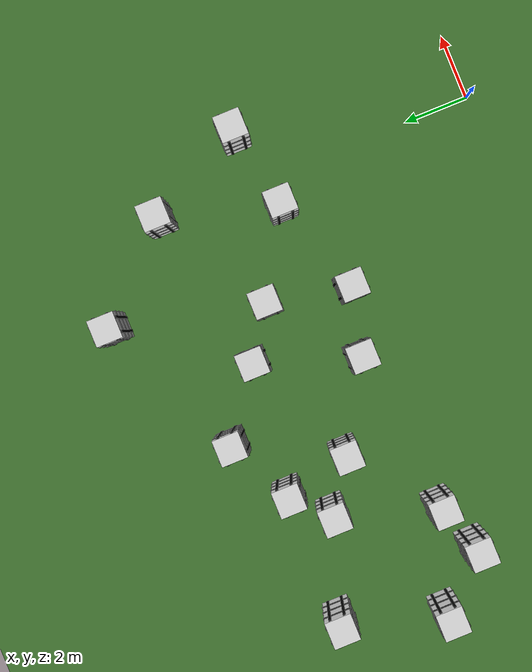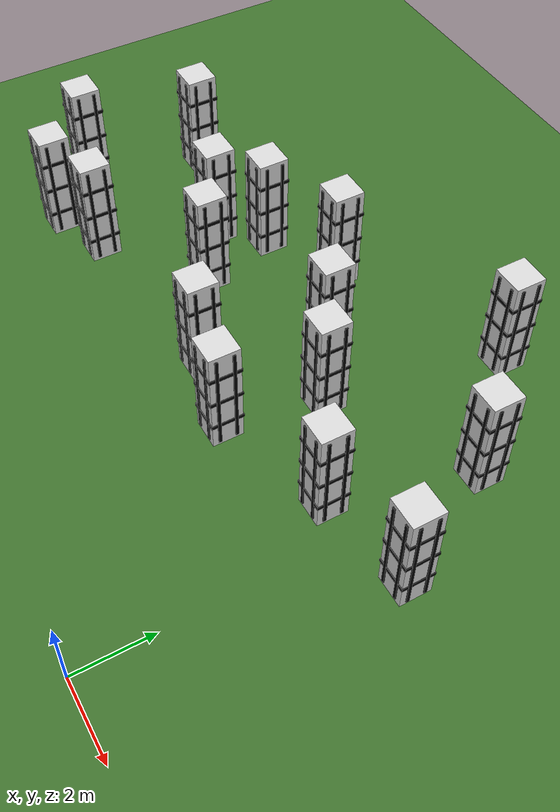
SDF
<sdf version="1.6">
 <world name="dense_world_complex">
  <model name="ground">
   <static>1</static>
   <link name="link">
    <collision name="collision"><geometry><box><size>45 35 0.1</size></box></geometry></collision>
    <visual name="visual">
     <geometry><box><size>45 35 0.1</size></box></geometry>
     <material><ambient>0.25 0.45 0.18 1</ambient><diffuse>0.25 0.45 0.18 1</diffuse></material>
    </visual>
   </link>
   <pose>3 2 -0.05 0 0 0</pose>
  </model>
  <model name="obs_01">
   <static>1</static>
   <pose>-14.0 6.5 1.5 0 0 0</pose>
   <link name="link">
    <collision name="collision"><geometry><box><size>0.8 0.8 3.0</size></box></geometry></collision>
    <visual name="body">
     <geometry><box><size>0.8 0.8 3.0</size></box></geometry>
     <material><ambient>0.85 0.85 0.85 1</ambient><diffuse>0.85 0.85 0.85 1</diffuse></material>
    </visual>
    <visual name="stripe_h_1">
     <pose>0 0 -0.8 0 0 0</pose>
     <geometry><box><size>0.84 0.84 0.10</size></box></geometry>
     <material><ambient>0.02 0.02 0.02 1</ambient><diffuse>0.02 0.02 0.02 1</diffuse></material>
    </visual>
    <visual name="stripe_h_2">
     <geometry><box><size>0.84 0.84 0.10</size></box></geometry>
     <material><ambient>0.02 0.02 0.02 1</ambient><diffuse>0.02 0.02 0.02 1</diffuse></material>
    </visual>
    <visual name="stripe_h_3">
     <pose>0 0 0.8 0 0 0</pose>
     <geometry><box><size>0.84 0.84 0.10</size></box></geometry>
     <material><ambient>0.02 0.02 0.02 1</ambient><diffuse>0.02 0.02 0.02 1</diffuse></material>
    </visual>
    <visual name="stripe_v_x_1">
     <pose>-0.22 0 0 0 0 0</pose>
     <geometry><box><size>0.08 0.86 2.8</size></box></geometry>
     <material><ambient>0.02 0.02 0.02 1</ambient><diffuse>0.02 0.02 0.02 1</diffuse></material>
    </visual>
    <visual name="stripe_v_x_2">
     <pose>0.22 0 0 0 0 0</pose>
     <geometry><box><size>0.08 0.86 2.8</size></box></geometry>
     <material><ambient>0.02 0.02 0.02 1</ambient><diffuse>0.02 0.02 0.02 1</diffuse></material>
    </visual>
    <visual name="stripe_v_y_1">
     <pose>0 -0.22 0 0 0 0</pose>
     <geometry><box><size>0.86 0.08 2.8</size></box></geometry>
     <material><ambient>0.02 0.02 0.02 1</ambient><diffuse>0.02 0.02 0.02 1</diffuse></material>
    </visual>
    <visual name="stripe_v_y_2">
     <pose>0 0.22 0 0 0 0</pose>
     <geometry><box><size>0.86 0.08 2.8</size></box></geometry>
     <material><ambient>0.02 0.02 0.02 1</ambient><diffuse>0.02 0.02 0.02 1</diffuse></material>
    </visual>
   </link>
  </model>
  <model name="obs_02">
   <static>1</static>
   <pose>-13.0 9.5 1.5 0 0 0</pose>
   <link name="link">
    <collision name="collision"><geometry><box><size>0.8 0.8 3.0</size></box></geometry></collision>
    <visual name="body">
     <geometry><box><size>0.8 0.8 3.0</size></box></geometry>
     <material><ambient>0.85 0.85 0.85 1</ambient><diffuse>0.85 0.85 0.85 1</diffuse></material>
    </visual>
    <visual name="stripe_h_1">
     <pose>0 0 -0.8 0 0 0</pose>
     <geometry><box><size>0.84 0.84 0.10</size></box></geometry>
     <material><ambient>0.02 0.02 0.02 1</ambient><diffuse>0.02 0.02 0.02 1</diffuse></material>
    </visual>
    <visual name="stripe_h_2">
     <geometry><box><size>0.84 0.84 0.10</size></box></geometry>
     <material><ambient>0.02 0.02 0.02 1</ambient><diffuse>0.02 0.02 0.02 1</diffuse></material>
    </visual>
    <visual name="stripe_h_3">
     <pose>0 0 0.8 0 0 0</pose>
     <geometry><box><size>0.84 0.84 0.10</size></box></geometry>
     <material><ambient>0.02 0.02 0.02 1</ambient><diffuse>0.02 0.02 0.02 1</diffuse></material>
    </visual>
    <visual name="stripe_v_x_1">
     <pose>-0.22 0 0 0 0 0</pose>
     <geometry><box><size>0.08 0.86 2.8</size></box></geometry>
     <material><ambient>0.02 0.02 0.02 1</ambient><diffuse>0.02 0.02 0.02 1</diffuse></material>
    </visual>
    <visual name="stripe_v_x_2">
     <pose>0.22 0 0 0 0 0</pose>
     <geometry><box><size>0.08 0.86 2.8</size></box></geometry>
     <material><ambient>0.02 0.02 0.02 1</ambient><diffuse>0.02 0.02 0.02 1</diffuse></material>
    </visual>
    <visual name="stripe_v_y_1">
     <pose>0 -0.22 0 0 0 0</pose>
     <geometry><box><size>0.86 0.08 2.8</size></box></geometry>
     <material><ambient>0.02 0.02 0.02 1</ambient><diffuse>0.02 0.02 0.02 1</diffuse></material>
    </visual>
    <visual name="stripe_v_y_2">
     <pose>0 0.22 0 0 0 0</pose>
     <geometry><box><size>0.86 0.08 2.8</size></box></geometry>
     <material><ambient>0.02 0.02 0.02 1</ambient><diffuse>0.02 0.02 0.02 1</diffuse></material>
    </visual>
   </link>
  </model>
  <model name="obs_03">
   <static>1</static>
   <pose>-11.0 5.5 1.5 0 0 0</pose>
   <link name="link">
    <collision name="collision"><geometry><box><size>0.8 0.8 3.0</size></box></geometry></collision>
    <visual name="body">
     <geometry><box><size>0.8 0.8 3.0</size></box></geometry>
     <material><ambient>0.85 0.85 0.85 1</ambient><diffuse>0.85 0.85 0.85 1</diffuse></material>
    </visual>
    <visual name="stripe_h_1">
     <pose>0 0 -0.8 0 0 0</pose>
     <geometry><box><size>0.84 0.84 0.10</size></box></geometry>
     <material><ambient>0.02 0.02 0.02 1</ambient><diffuse>0.02 0.02 0.02 1</diffuse></material>
    </visual>
    <visual name="stripe_h_2">
     <geometry><box><size>0.84 0.84 0.10</size></box></geometry>
     <material><ambient>0.02 0.02 0.02 1</ambient><diffuse>0.02 0.02 0.02 1</diffuse></material>
    </visual>
    <visual name="stripe_h_3">
     <pose>0 0 0.8 0 0 0</pose>
     <geometry><box><size>0.84 0.84 0.10</size></box></geometry>
     <material><ambient>0.02 0.02 0.02 1</ambient><diffuse>0.02 0.02 0.02 1</diffuse></material>
    </visual>
    <visual name="stripe_v_x_1">
     <pose>-0.22 0 0 0 0 0</pose>
     <geometry><box><size>0.08 0.86 2.8</size></box></geometry>
     <material><ambient>0.02 0.02 0.02 1</ambient><diffuse>0.02 0.02 0.02 1</diffuse></material>
    </visual>
    <visual name="stripe_v_x_2">
     <pose>0.22 0 0 0 0 0</pose>
     <geometry><box><size>0.08 0.86 2.8</size></box></geometry>
     <material><ambient>0.02 0.02 0.02 1</ambient><diffuse>0.02 0.02 0.02 1</diffuse></material>
    </visual>
    <visual name="stripe_v_y_1">
     <pose>0 -0.22 0 0 0 0</pose>
     <geometry><box><size>0.86 0.08 2.8</size></box></geometry>
     <material><ambient>0.02 0.02 0.02 1</ambient><diffuse>0.02 0.02 0.02 1</diffuse></material>
    </visual>
    <visual name="stripe_v_y_2">
     <pose>0 0.22 0 0 0 0</pose>
     <geometry><box><size>0.86 0.08 2.8</size></box></geometry>
     <material><ambient>0.02 0.02 0.02 1</ambient><diffuse>0.02 0.02 0.02 1</diffuse></material>
    </visual>
   </link>
  </model>
  <model name="obs_04">
   <static>1</static>
   <pose>-10.0 8.5 1.5 0 0 0</pose>
   <link name="link">
    <collision name="collision"><geometry><box><size>0.8 0.8 3.0</size></box></geometry></collision>
    <visual name="body">
     <geometry><box><size>0.8 0.8 3.0</size></box></geometry>
     <material><ambient>0.85 0.85 0.85 1</ambient><diffuse>0.85 0.85 0.85 1</diffuse></material>
    </visual>
    <visual name="stripe_h_1">
     <pose>0 0 -0.8 0 0 0</pose>
     <geometry><box><size>0.84 0.84 0.10</size></box></geometry>
     <material><ambient>0.02 0.02 0.02 1</ambient><diffuse>0.02 0.02 0.02 1</diffuse></material>
    </visual>
    <visual name="stripe_h_2">
     <geometry><box><size>0.84 0.84 0.10</size></box></geometry>
     <material><ambient>0.02 0.02 0.02 1</ambient><diffuse>0.02 0.02 0.02 1</diffuse></material>
    </visual>
    <visual name="stripe_h_3">
     <pose>0 0 0.8 0 0 0</pose>
     <geometry><box><size>0.84 0.84 0.10</size></box></geometry>
     <material><ambient>0.02 0.02 0.02 1</ambient><diffuse>0.02 0.02 0.02 1</diffuse></material>
    </visual>
    <visual name="stripe_v_x_1">
     <pose>-0.22 0 0 0 0 0</pose>
     <geometry><box><size>0.08 0.86 2.8</size></box></geometry>
     <material><ambient>0.02 0.02 0.02 1</ambient><diffuse>0.02 0.02 0.02 1</diffuse></material>
    </visual>
    <visual name="stripe_v_x_2">
     <pose>0.22 0 0 0 0 0</pose>
     <geometry><box><size>0.08 0.86 2.8</size></box></geometry>
     <material><ambient>0.02 0.02 0.02 1</ambient><diffuse>0.02 0.02 0.02 1</diffuse></material>
    </visual>
    <visual name="stripe_v_y_1">
     <pose>0 -0.22 0 0 0 0</pose>
     <geometry><box><size>0.86 0.08 2.8</size></box></geometry>
     <material><ambient>0.02 0.02 0.02 1</ambient><diffuse>0.02 0.02 0.02 1</diffuse></material>
    </visual>
    <visual name="stripe_v_y_2">
     <pose>0 0.22 0 0 0 0</pose>
     <geometry><box><size>0.86 0.08 2.8</size></box></geometry>
     <material><ambient>0.02 0.02 0.02 1</ambient><diffuse>0.02 0.02 0.02 1</diffuse></material>
    </visual>
   </link>
  </model>
  <model name="obs_05">
   <static>1</static>
   <pose>-8.5 7.5 1.5 0 0 0</pose>
   <link name="link">
    <collision name="collision"><geometry><box><size>0.8 0.8 3.0</size></box></geometry></collision>
    <visual name="body">
     <geometry><box><size>0.8 0.8 3.0</size></box></geometry>
     <material><ambient>0.85 0.85 0.85 1</ambient><diffuse>0.85 0.85 0.85 1</diffuse></material>
    </visual>
    <visual name="stripe_h_1">
     <pose>0 0 -0.8 0 0 0</pose>
     <geometry><box><size>0.84 0.84 0.10</size></box></geometry>
     <material><ambient>0.02 0.02 0.02 1</ambient><diffuse>0.02 0.02 0.02 1</diffuse></material>
    </visual>
    <visual name="stripe_h_2">
     <geometry><box><size>0.84 0.84 0.10</size></box></geometry>
     <material><ambient>0.02 0.02 0.02 1</ambient><diffuse>0.02 0.02 0.02 1</diffuse></material>
    </visual>
    <visual name="stripe_h_3">
     <pose>0 0 0.8 0 0 0</pose>
     <geometry><box><size>0.84 0.84 0.10</size></box></geometry>
     <material><ambient>0.02 0.02 0.02 1</ambient><diffuse>0.02 0.02 0.02 1</diffuse></material>
    </visual>
    <visual name="stripe_v_x_1">
     <pose>-0.22 0 0 0 0 0</pose>
     <geometry><box><size>0.08 0.86 2.8</size></box></geometry>
     <material><ambient>0.02 0.02 0.02 1</ambient><diffuse>0.02 0.02 0.02 1</diffuse></material>
    </visual>
    <visual name="stripe_v_x_2">
     <pose>0.22 0 0 0 0 0</pose>
     <geometry><box><size>0.08 0.86 2.8</size></box></geometry>
     <material><ambient>0.02 0.02 0.02 1</ambient><diffuse>0.02 0.02 0.02 1</diffuse></material>
    </visual>
    <visual name="stripe_v_y_1">
     <pose>0 -0.22 0 0 0 0</pose>
     <geometry><box><size>0.86 0.08 2.8</size></box></geometry>
     <material><ambient>0.02 0.02 0.02 1</ambient><diffuse>0.02 0.02 0.02 1</diffuse></material>
    </visual>
    <visual name="stripe_v_y_2">
     <pose>0 0.22 0 0 0 0</pose>
     <geometry><box><size>0.86 0.08 2.8</size></box></geometry>
     <material><ambient>0.02 0.02 0.02 1</ambient><diffuse>0.02 0.02 0.02 1</diffuse></material>
    </visual>
   </link>
  </model>
  <model name="obs_06">
   <static>1</static>
   <pose>-7.0 10.5 1.5 0 0 0</pose>
   <link name="link">
    <collision name="collision"><geometry><box><size>0.8 0.8 3.0</size></box></geometry></collision>
    <visual name="body">
     <geometry><box><size>0.8 0.8 3.0</size></box></geometry>
     <material><ambient>0.85 0.85 0.85 1</ambient><diffuse>0.85 0.85 0.85 1</diffuse></material>
    </visual>
    <visual name="stripe_h_1">
     <pose>0 0 -0.8 0 0 0</pose>
     <geometry><box><size>0.84 0.84 0.10</size></box></geometry>
     <material><ambient>0.02 0.02 0.02 1</ambient><diffuse>0.02 0.02 0.02 1</diffuse></material>
    </visual>
    <visual name="stripe_h_2">
     <geometry><box><size>0.84 0.84 0.10</size></box></geometry>
     <material><ambient>0.02 0.02 0.02 1</ambient><diffuse>0.02 0.02 0.02 1</diffuse></material>
    </visual>
    <visual name="stripe_h_3">
     <pose>0 0 0.8 0 0 0</pose>
     <geometry><box><size>0.84 0.84 0.10</size></box></geometry>
     <material><ambient>0.02 0.02 0.02 1</ambient><diffuse>0.02 0.02 0.02 1</diffuse></material>
    </visual>
    <visual name="stripe_v_x_1">
     <pose>-0.22 0 0 0 0 0</pose>
     <geometry><box><size>0.08 0.86 2.8</size></box></geometry>
     <material><ambient>0.02 0.02 0.02 1</ambient><diffuse>0.02 0.02 0.02 1</diffuse></material>
    </visual>
    <visual name="stripe_v_x_2">
     <pose>0.22 0 0 0 0 0</pose>
     <geometry><box><size>0.08 0.86 2.8</size></box></geometry>
     <material><ambient>0.02 0.02 0.02 1</ambient><diffuse>0.02 0.02 0.02 1</diffuse></material>
    </visual>
    <visual name="stripe_v_y_1">
     <pose>0 -0.22 0 0 0 0</pose>
     <geometry><box><size>0.86 0.08 2.8</size></box></geometry>
     <material><ambient>0.02 0.02 0.02 1</ambient><diffuse>0.02 0.02 0.02 1</diffuse></material>
    </visual>
    <visual name="stripe_v_y_2">
     <pose>0 0.22 0 0 0 0</pose>
     <geometry><box><size>0.86 0.08 2.8</size></box></geometry>
     <material><ambient>0.02 0.02 0.02 1</ambient><diffuse>0.02 0.02 0.02 1</diffuse></material>
    </visual>
   </link>
  </model>
  <model name="obs_07">
   <static>1</static>
   <pose>-6.0 6.0 1.5 0 0 0</pose>
   <link name="link">
    <collision name="collision"><geometry><box><size>0.8 0.8 3.0</size></box></geometry></collision>
    <visual name="body">
     <geometry><box><size>0.8 0.8 3.0</size></box></geometry>
     <material><ambient>0.85 0.85 0.85 1</ambient><diffuse>0.85 0.85 0.85 1</diffuse></material>
    </visual>
    <visual name="stripe_h_1">
     <pose>0 0 -0.8 0 0 0</pose>
     <geometry><box><size>0.84 0.84 0.10</size></box></geometry>
     <material><ambient>0.02 0.02 0.02 1</ambient><diffuse>0.02 0.02 0.02 1</diffuse></material>
    </visual>
    <visual name="stripe_h_2">
     <geometry><box><size>0.84 0.84 0.10</size></box></geometry>
     <material><ambient>0.02 0.02 0.02 1</ambient><diffuse>0.02 0.02 0.02 1</diffuse></material>
    </visual>
    <visual name="stripe_h_3">
     <pose>0 0 0.8 0 0 0</pose>
     <geometry><box><size>0.84 0.84 0.10</size></box></geometry>
     <material><ambient>0.02 0.02 0.02 1</ambient><diffuse>0.02 0.02 0.02 1</diffuse></material>
    </visual>
    <visual name="stripe_v_x_1">
     <pose>-0.22 0 0 0 0 0</pose>
     <geometry><box><size>0.08 0.86 2.8</size></box></geometry>
     <material><ambient>0.02 0.02 0.02 1</ambient><diffuse>0.02 0.02 0.02 1</diffuse></material>
    </visual>
    <visual name="stripe_v_x_2">
     <pose>0.22 0 0 0 0 0</pose>
     <geometry><box><size>0.08 0.86 2.8</size></box></geometry>
     <material><ambient>0.02 0.02 0.02 1</ambient><diffuse>0.02 0.02 0.02 1</diffuse></material>
    </visual>
    <visual name="stripe_v_y_1">
     <pose>0 -0.22 0 0 0 0</pose>
     <geometry><box><size>0.86 0.08 2.8</size></box></geometry>
     <material><ambient>0.02 0.02 0.02 1</ambient><diffuse>0.02 0.02 0.02 1</diffuse></material>
    </visual>
    <visual name="stripe_v_y_2">
     <pose>0 0.22 0 0 0 0</pose>
     <geometry><box><size>0.86 0.08 2.8</size></box></geometry>
     <material><ambient>0.02 0.02 0.02 1</ambient><diffuse>0.02 0.02 0.02 1</diffuse></material>
    </visual>
   </link>
  </model>
  <model name="obs_08">
   <static>1</static>
   <pose>-5.0 9.0 1.5 0 0 0</pose>
   <link name="link">
    <collision name="collision"><geometry><box><size>0.8 0.8 3.0</size></box></geometry></collision>
    <visual name="body">
     <geometry><box><size>0.8 0.8 3.0</size></box></geometry>
     <material><ambient>0.85 0.85 0.85 1</ambient><diffuse>0.85 0.85 0.85 1</diffuse></material>
    </visual>
    <visual name="stripe_h_1">
     <pose>0 0 -0.8 0 0 0</pose>
     <geometry><box><size>0.84 0.84 0.10</size></box></geometry>
     <material><ambient>0.02 0.02 0.02 1</ambient><diffuse>0.02 0.02 0.02 1</diffuse></material>
    </visual>
    <visual name="stripe_h_2">
     <geometry><box><size>0.84 0.84 0.10</size></box></geometry>
     <material><ambient>0.02 0.02 0.02 1</ambient><diffuse>0.02 0.02 0.02 1</diffuse></material>
    </visual>
    <visual name="stripe_h_3">
     <pose>0 0 0.8 0 0 0</pose>
     <geometry><box><size>0.84 0.84 0.10</size></box></geometry>
     <material><ambient>0.02 0.02 0.02 1</ambient><diffuse>0.02 0.02 0.02 1</diffuse></material>
    </visual>
    <visual name="stripe_v_x_1">
     <pose>-0.22 0 0 0 0 0</pose>
     <geometry><box><size>0.08 0.86 2.8</size></box></geometry>
     <material><ambient>0.02 0.02 0.02 1</ambient><diffuse>0.02 0.02 0.02 1</diffuse></material>
    </visual>
    <visual name="stripe_v_x_2">
     <pose>0.22 0 0 0 0 0</pose>
     <geometry><box><size>0.08 0.86 2.8</size></box></geometry>
     <material><ambient>0.02 0.02 0.02 1</ambient><diffuse>0.02 0.02 0.02 1</diffuse></material>
    </visual>
    <visual name="stripe_v_y_1">
     <pose>0 -0.22 0 0 0 0</pose>
     <geometry><box><size>0.86 0.08 2.8</size></box></geometry>
     <material><ambient>0.02 0.02 0.02 1</ambient><diffuse>0.02 0.02 0.02 1</diffuse></material>
    </visual>
    <visual name="stripe_v_y_2">
     <pose>0 0.22 0 0 0 0</pose>
     <geometry><box><size>0.86 0.08 2.8</size></box></geometry>
     <material><ambient>0.02 0.02 0.02 1</ambient><diffuse>0.02 0.02 0.02 1</diffuse></material>
    </visual>
   </link>
  </model>
  <model name="obs_09">
   <static>1</static>
   <pose>-3.5 8.0 1.5 0 0 0</pose>
   <link name="link">
    <collision name="collision"><geometry><box><size>0.8 0.8 3.0</size></box></geometry></collision>
    <visual name="body">
     <geometry><box><size>0.8 0.8 3.0</size></box></geometry>
     <material><ambient>0.85 0.85 0.85 1</ambient><diffuse>0.85 0.85 0.85 1</diffuse></material>
    </visual>
    <visual name="stripe_h_1">
     <pose>0 0 -0.8 0 0 0</pose>
     <geometry><box><size>0.84 0.84 0.10</size></box></geometry>
     <material><ambient>0.02 0.02 0.02 1</ambient><diffuse>0.02 0.02 0.02 1</diffuse></material>
    </visual>
    <visual name="stripe_h_2">
     <geometry><box><size>0.84 0.84 0.10</size></box></geometry>
     <material><ambient>0.02 0.02 0.02 1</ambient><diffuse>0.02 0.02 0.02 1</diffuse></material>
    </visual>
    <visual name="stripe_h_3">
     <pose>0 0 0.8 0 0 0</pose>
     <geometry><box><size>0.84 0.84 0.10</size></box></geometry>
     <material><ambient>0.02 0.02 0.02 1</ambient><diffuse>0.02 0.02 0.02 1</diffuse></material>
    </visual>
    <visual name="stripe_v_x_1">
     <pose>-0.22 0 0 0 0 0</pose>
     <geometry><box><size>0.08 0.86 2.8</size></box></geometry>
     <material><ambient>0.02 0.02 0.02 1</ambient><diffuse>0.02 0.02 0.02 1</diffuse></material>
    </visual>
    <visual name="stripe_v_x_2">
     <pose>0.22 0 0 0 0 0</pose>
     <geometry><box><size>0.08 0.86 2.8</size></box></geometry>
     <material><ambient>0.02 0.02 0.02 1</ambient><diffuse>0.02 0.02 0.02 1</diffuse></material>
    </visual>
    <visual name="stripe_v_y_1">
     <pose>0 -0.22 0 0 0 0</pose>
     <geometry><box><size>0.86 0.08 2.8</size></box></geometry>
     <material><ambient>0.02 0.02 0.02 1</ambient><diffuse>0.02 0.02 0.02 1</diffuse></material>
    </visual>
    <visual name="stripe_v_y_2">
     <pose>0 0.22 0 0 0 0</pose>
     <geometry><box><size>0.86 0.08 2.8</size></box></geometry>
     <material><ambient>0.02 0.02 0.02 1</ambient><diffuse>0.02 0.02 0.02 1</diffuse></material>
    </visual>
   </link>
  </model>
  <model name="obs_10">
   <static>1</static>
   <pose>-2.5 12.5 1.5 0 0 0</pose>
   <link name="link">
    <collision name="collision"><geometry><box><size>0.8 0.8 3.0</size></box></geometry></collision>
    <visual name="body">
     <geometry><box><size>0.8 0.8 3.0</size></box></geometry>
     <material><ambient>0.85 0.85 0.85 1</ambient><diffuse>0.85 0.85 0.85 1</diffuse></material>
    </visual>
    <visual name="stripe_h_1">
     <pose>0 0 -0.8 0 0 0</pose>
     <geometry><box><size>0.84 0.84 0.10</size></box></geometry>
     <material><ambient>0.02 0.02 0.02 1</ambient><diffuse>0.02 0.02 0.02 1</diffuse></material>
    </visual>
    <visual name="stripe_h_2">
     <geometry><box><size>0.84 0.84 0.10</size></box></geometry>
     <material><ambient>0.02 0.02 0.02 1</ambient><diffuse>0.02 0.02 0.02 1</diffuse></material>
    </visual>
    <visual name="stripe_h_3">
     <pose>0 0 0.8 0 0 0</pose>
     <geometry><box><size>0.84 0.84 0.10</size></box></geometry>
     <material><ambient>0.02 0.02 0.02 1</ambient><diffuse>0.02 0.02 0.02 1</diffuse></material>
    </visual>
    <visual name="stripe_v_x_1">
     <pose>-0.22 0 0 0 0 0</pose>
     <geometry><box><size>0.08 0.86 2.8</size></box></geometry>
     <material><ambient>0.02 0.02 0.02 1</ambient><diffuse>0.02 0.02 0.02 1</diffuse></material>
    </visual>
    <visual name="stripe_v_x_2">
     <pose>0.22 0 0 0 0 0</pose>
     <geometry><box><size>0.08 0.86 2.8</size></box></geometry>
     <material><ambient>0.02 0.02 0.02 1</ambient><diffuse>0.02 0.02 0.02 1</diffuse></material>
    </visual>
    <visual name="stripe_v_y_1">
     <pose>0 -0.22 0 0 0 0</pose>
     <geometry><box><size>0.86 0.08 2.8</size></box></geometry>
     <material><ambient>0.02 0.02 0.02 1</ambient><diffuse>0.02 0.02 0.02 1</diffuse></material>
    </visual>
    <visual name="stripe_v_y_2">
     <pose>0 0.22 0 0 0 0</pose>
     <geometry><box><size>0.86 0.08 2.8</size></box></geometry>
     <material><ambient>0.02 0.02 0.02 1</ambient><diffuse>0.02 0.02 0.02 1</diffuse></material>
    </visual>
   </link>
  </model>
  <model name="obs_11">
   <static>1</static>
   <pose>-1.0 6.5 1.5 0 0 0</pose>
   <link name="link">
    <collision name="collision"><geometry><box><size>0.8 0.8 3.0</size></box></geometry></collision>
    <visual name="body">
     <geometry><box><size>0.8 0.8 3.0</size></box></geometry>
     <material><ambient>0.85 0.85 0.85 1</ambient><diffuse>0.85 0.85 0.85 1</diffuse></material>
    </visual>
    <visual name="stripe_h_1">
     <pose>0 0 -0.8 0 0 0</pose>
     <geometry><box><size>0.84 0.84 0.10</size></box></geometry>
     <material><ambient>0.02 0.02 0.02 1</ambient><diffuse>0.02 0.02 0.02 1</diffuse></material>
    </visual>
    <visual name="stripe_h_2">
     <geometry><box><size>0.84 0.84 0.10</size></box></geometry>
     <material><ambient>0.02 0.02 0.02 1</ambient><diffuse>0.02 0.02 0.02 1</diffuse></material>
    </visual>
    <visual name="stripe_h_3">
     <pose>0 0 0.8 0 0 0</pose>
     <geometry><box><size>0.84 0.84 0.10</size></box></geometry>
     <material><ambient>0.02 0.02 0.02 1</ambient><diffuse>0.02 0.02 0.02 1</diffuse></material>
    </visual>
    <visual name="stripe_v_x_1">
     <pose>-0.22 0 0 0 0 0</pose>
     <geometry><box><size>0.08 0.86 2.8</size></box></geometry>
     <material><ambient>0.02 0.02 0.02 1</ambient><diffuse>0.02 0.02 0.02 1</diffuse></material>
    </visual>
    <visual name="stripe_v_x_2">
     <pose>0.22 0 0 0 0 0</pose>
     <geometry><box><size>0.08 0.86 2.8</size></box></geometry>
     <material><ambient>0.02 0.02 0.02 1</ambient><diffuse>0.02 0.02 0.02 1</diffuse></material>
    </visual>
    <visual name="stripe_v_y_1">
     <pose>0 -0.22 0 0 0 0</pose>
     <geometry><box><size>0.86 0.08 2.8</size></box></geometry>
     <material><ambient>0.02 0.02 0.02 1</ambient><diffuse>0.02 0.02 0.02 1</diffuse></material>
    </visual>
    <visual name="stripe_v_y_2">
     <pose>0 0.22 0 0 0 0</pose>
     <geometry><box><size>0.86 0.08 2.8</size></box></geometry>
     <material><ambient>0.02 0.02 0.02 1</ambient><diffuse>0.02 0.02 0.02 1</diffuse></material>
    </visual>
   </link>
  </model>
  <model name="obs_12">
   <static>1</static>
   <pose>0.0 10.0 1.5 0 0 0</pose>
   <link name="link">
    <collision name="collision"><geometry><box><size>0.8 0.8 3.0</size></box></geometry></collision>
    <visual name="body">
     <geometry><box><size>0.8 0.8 3.0</size></box></geometry>
     <material><ambient>0.85 0.85 0.85 1</ambient><diffuse>0.85 0.85 0.85 1</diffuse></material>
    </visual>
    <visual name="stripe_h_1">
     <pose>0 0 -0.8 0 0 0</pose>
     <geometry><box><size>0.84 0.84 0.10</size></box></geometry>
     <material><ambient>0.02 0.02 0.02 1</ambient><diffuse>0.02 0.02 0.02 1</diffuse></material>
    </visual>
    <visual name="stripe_h_2">
     <geometry><box><size>0.84 0.84 0.10</size></box></geometry>
     <material><ambient>0.02 0.02 0.02 1</ambient><diffuse>0.02 0.02 0.02 1</diffuse></material>
    </visual>
    <visual name="stripe_h_3">
     <pose>0 0 0.8 0 0 0</pose>
     <geometry><box><size>0.84 0.84 0.10</size></box></geometry>
     <material><ambient>0.02 0.02 0.02 1</ambient><diffuse>0.02 0.02 0.02 1</diffuse></material>
    </visual>
    <visual name="stripe_v_x_1">
     <pose>-0.22 0 0 0 0 0</pose>
     <geometry><box><size>0.08 0.86 2.8</size></box></geometry>
     <material><ambient>0.02 0.02 0.02 1</ambient><diffuse>0.02 0.02 0.02 1</diffuse></material>
    </visual>
    <visual name="stripe_v_x_2">
     <pose>0.22 0 0 0 0 0</pose>
     <geometry><box><size>0.08 0.86 2.8</size></box></geometry>
     <material><ambient>0.02 0.02 0.02 1</ambient><diffuse>0.02 0.02 0.02 1</diffuse></material>
    </visual>
    <visual name="stripe_v_y_1">
     <pose>0 -0.22 0 0 0 0</pose>
     <geometry><box><size>0.86 0.08 2.8</size></box></geometry>
     <material><ambient>0.02 0.02 0.02 1</ambient><diffuse>0.02 0.02 0.02 1</diffuse></material>
    </visual>
    <visual name="stripe_v_y_2">
     <pose>0 0.22 0 0 0 0</pose>
     <geometry><box><size>0.86 0.08 2.8</size></box></geometry>
     <material><ambient>0.02 0.02 0.02 1</ambient><diffuse>0.02 0.02 0.02 1</diffuse></material>
    </visual>
   </link>
  </model>
  <model name="obs_13">
   <static>1</static>
   <pose>1.5 7.0 1.5 0 0 0</pose>
   <link name="link">
    <collision name="collision"><geometry><box><size>0.8 0.8 3.0</size></box></geometry></collision>
    <visual name="body">
     <geometry><box><size>0.8 0.8 3.0</size></box></geometry>
     <material><ambient>0.85 0.85 0.85 1</ambient><diffuse>0.85 0.85 0.85 1</diffuse></material>
    </visual>
    <visual name="stripe_h_1">
     <pose>0 0 -0.8 0 0 0</pose>
     <geometry><box><size>0.84 0.84 0.10</size></box></geometry>
     <material><ambient>0.02 0.02 0.02 1</ambient><diffuse>0.02 0.02 0.02 1</diffuse></material>
    </visual>
    <visual name="stripe_h_2">
     <geometry><box><size>0.84 0.84 0.10</size></box></geometry>
     <material><ambient>0.02 0.02 0.02 1</ambient><diffuse>0.02 0.02 0.02 1</diffuse></material>
    </visual>
    <visual name="stripe_h_3">
     <pose>0 0 0.8 0 0 0</pose>
     <geometry><box><size>0.84 0.84 0.10</size></box></geometry>
     <material><ambient>0.02 0.02 0.02 1</ambient><diffuse>0.02 0.02 0.02 1</diffuse></material>
    </visual>
    <visual name="stripe_v_x_1">
     <pose>-0.22 0 0 0 0 0</pose>
     <geometry><box><size>0.08 0.86 2.8</size></box></geometry>
     <material><ambient>0.02 0.02 0.02 1</ambient><diffuse>0.02 0.02 0.02 1</diffuse></material>
    </visual>
    <visual name="stripe_v_x_2">
     <pose>0.22 0 0 0 0 0</pose>
     <geometry><box><size>0.08 0.86 2.8</size></box></geometry>
     <material><ambient>0.02 0.02 0.02 1</ambient><diffuse>0.02 0.02 0.02 1</diffuse></material>
    </visual>
    <visual name="stripe_v_y_1">
     <pose>0 -0.22 0 0 0 0</pose>
     <geometry><box><size>0.86 0.08 2.8</size></box></geometry>
     <material><ambient>0.02 0.02 0.02 1</ambient><diffuse>0.02 0.02 0.02 1</diffuse></material>
    </visual>
    <visual name="stripe_v_y_2">
     <pose>0 0.22 0 0 0 0</pose>
     <geometry><box><size>0.86 0.08 2.8</size></box></geometry>
     <material><ambient>0.02 0.02 0.02 1</ambient><diffuse>0.02 0.02 0.02 1</diffuse></material>
    </visual>
   </link>
  </model>
  <model name="obs_26">
   <static>1</static>
   <pose>-12.5 5.0 1.5 0 0 0</pose>
   <link name="link">
    <collision name="collision"><geometry><box><size>0.8 0.8 3.0</size></box></geometry></collision>
    <visual name="body">
     <geometry><box><size>0.8 0.8 3.0</size></box></geometry>
     <material><ambient>0.85 0.85 0.85 1</ambient><diffuse>0.85 0.85 0.85 1</diffuse></material>
    </visual>
    <visual name="stripe_h_1">
     <pose>0 0 -0.8 0 0 0</pose>
     <geometry><box><size>0.84 0.84 0.10</size></box></geometry>
     <material><ambient>0.02 0.02 0.02 1</ambient><diffuse>0.02 0.02 0.02 1</diffuse></material>
    </visual>
    <visual name="stripe_h_2">
     <geometry><box><size>0.84 0.84 0.10</size></box></geometry>
     <material><ambient>0.02 0.02 0.02 1</ambient><diffuse>0.02 0.02 0.02 1</diffuse></material>
    </visual>
    <visual name="stripe_h_3">
     <pose>0 0 0.8 0 0 0</pose>
     <geometry><box><size>0.84 0.84 0.10</size></box></geometry>
     <material><ambient>0.02 0.02 0.02 1</ambient><diffuse>0.02 0.02 0.02 1</diffuse></material>
    </visual>
    <visual name="stripe_v_x_1">
     <pose>-0.22 0 0 0 0 0</pose>
     <geometry><box><size>0.08 0.86 2.8</size></box></geometry>
     <material><ambient>0.02 0.02 0.02 1</ambient><diffuse>0.02 0.02 0.02 1</diffuse></material>
    </visual>
    <visual name="stripe_v_x_2">
     <pose>0.22 0 0 0 0 0</pose>
     <geometry><box><size>0.08 0.86 2.8</size></box></geometry>
     <material><ambient>0.02 0.02 0.02 1</ambient><diffuse>0.02 0.02 0.02 1</diffuse></material>
    </visual>
    <visual name="stripe_v_y_1">
     <pose>0 -0.22 0 0 0 0</pose>
     <geometry><box><size>0.86 0.08 2.8</size></box></geometry>
     <material><ambient>0.02 0.02 0.02 1</ambient><diffuse>0.02 0.02 0.02 1</diffuse></material>
    </visual>
    <visual name="stripe_v_y_2">
     <pose>0 0.22 0 0 0 0</pose>
     <geometry><box><size>0.86 0.08 2.8</size></box></geometry>
     <material><ambient>0.02 0.02 0.02 1</ambient><diffuse>0.02 0.02 0.02 1</diffuse></material>
    </visual>
   </link>
  </model>
  <model name="obs_27">
   <static>1</static>
   <pose>-9.0 9.5 1.5 0 0 0</pose>
   <link name="link">
    <collision name="collision"><geometry><box><size>0.8 0.8 3.0</size></box></geometry></collision>
    <visual name="body">
     <geometry><box><size>0.8 0.8 3.0</size></box></geometry>
     <material><ambient>0.85 0.85 0.85 1</ambient><diffuse>0.85 0.85 0.85 1</diffuse></material>
    </visual>
    <visual name="stripe_h_1">
     <pose>0 0 -0.8 0 0 0</pose>
     <geometry><box><size>0.84 0.84 0.10</size></box></geometry>
     <material><ambient>0.02 0.02 0.02 1</ambient><diffuse>0.02 0.02 0.02 1</diffuse></material>
    </visual>
    <visual name="stripe_h_2">
     <geometry><box><size>0.84 0.84 0.10</size></box></geometry>
     <material><ambient>0.02 0.02 0.02 1</ambient><diffuse>0.02 0.02 0.02 1</diffuse></material>
    </visual>
    <visual name="stripe_h_3">
     <pose>0 0 0.8 0 0 0</pose>
     <geometry><box><size>0.84 0.84 0.10</size></box></geometry>
     <material><ambient>0.02 0.02 0.02 1</ambient><diffuse>0.02 0.02 0.02 1</diffuse></material>
    </visual>
    <visual name="stripe_v_x_1">
     <pose>-0.22 0 0 0 0 0</pose>
     <geometry><box><size>0.08 0.86 2.8</size></box></geometry>
     <material><ambient>0.02 0.02 0.02 1</ambient><diffuse>0.02 0.02 0.02 1</diffuse></material>
    </visual>
    <visual name="stripe_v_x_2">
     <pose>0.22 0 0 0 0 0</pose>
     <geometry><box><size>0.08 0.86 2.8</size></box></geometry>
     <material><ambient>0.02 0.02 0.02 1</ambient><diffuse>0.02 0.02 0.02 1</diffuse></material>
    </visual>
    <visual name="stripe_v_y_1">
     <pose>0 -0.22 0 0 0 0</pose>
     <geometry><box><size>0.86 0.08 2.8</size></box></geometry>
     <material><ambient>0.02 0.02 0.02 1</ambient><diffuse>0.02 0.02 0.02 1</diffuse></material>
    </visual>
    <visual name="stripe_v_y_2">
     <pose>0 0.22 0 0 0 0</pose>
     <geometry><box><size>0.86 0.08 2.8</size></box></geometry>
     <material><ambient>0.02 0.02 0.02 1</ambient><diffuse>0.02 0.02 0.02 1</diffuse></material>
    </visual>
   </link>
  </model>
  <model name="obs_28">
   <static>1</static>
   <pose>-4.0 5.5 1.5 0 0 0</pose>
   <link name="link">
    <collision name="collision"><geometry><box><size>0.8 0.8 3.0</size></box></geometry></collision>
    <visual name="body">
     <geometry><box><size>0.8 0.8 3.0</size></box></geometry>
     <material><ambient>0.85 0.85 0.85 1</ambient><diffuse>0.85 0.85 0.85 1</diffuse></material>
    </visual>
    <visual name="stripe_h_1">
     <pose>0 0 -0.8 0 0 0</pose>
     <geometry><box><size>0.84 0.84 0.10</size></box></geometry>
     <material><ambient>0.02 0.02 0.02 1</ambient><diffuse>0.02 0.02 0.02 1</diffuse></material>
    </visual>
    <visual name="stripe_h_2">
     <geometry><box><size>0.84 0.84 0.10</size></box></geometry>
     <material><ambient>0.02 0.02 0.02 1</ambient><diffuse>0.02 0.02 0.02 1</diffuse></material>
    </visual>
    <visual name="stripe_h_3">
     <pose>0 0 0.8 0 0 0</pose>
     <geometry><box><size>0.84 0.84 0.10</size></box></geometry>
     <material><ambient>0.02 0.02 0.02 1</ambient><diffuse>0.02 0.02 0.02 1</diffuse></material>
    </visual>
    <visual name="stripe_v_x_1">
     <pose>-0.22 0 0 0 0 0</pose>
     <geometry><box><size>0.08 0.86 2.8</size></box></geometry>
     <material><ambient>0.02 0.02 0.02 1</ambient><diffuse>0.02 0.02 0.02 1</diffuse></material>
    </visual>
    <visual name="stripe_v_x_2">
     <pose>0.22 0 0 0 0 0</pose>
     <geometry><box><size>0.08 0.86 2.8</size></box></geometry>
     <material><ambient>0.02 0.02 0.02 1</ambient><diffuse>0.02 0.02 0.02 1</diffuse></material>
    </visual>
    <visual name="stripe_v_y_1">
     <pose>0 -0.22 0 0 0 0</pose>
     <geometry><box><size>0.86 0.08 2.8</size></box></geometry>
     <material><ambient>0.02 0.02 0.02 1</ambient><diffuse>0.02 0.02 0.02 1</diffuse></material>
    </visual>
    <visual name="stripe_v_y_2">
     <pose>0 0.22 0 0 0 0</pose>
     <geometry><box><size>0.86 0.08 2.8</size></box></geometry>
     <material><ambient>0.02 0.02 0.02 1</ambient><diffuse>0.02 0.02 0.02 1</diffuse></material>
    </visual>
   </link>
  </model>
 </world>
</sdf>
